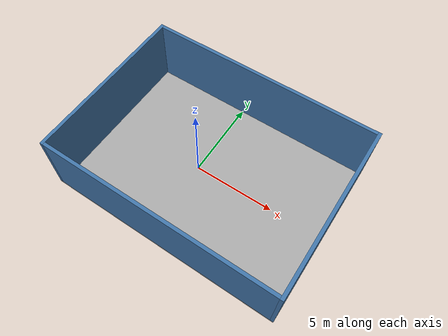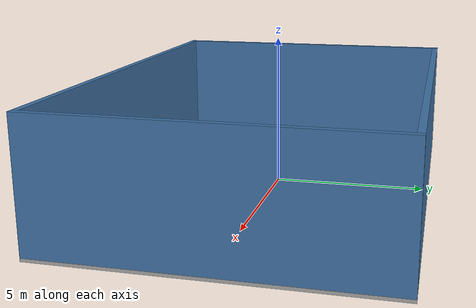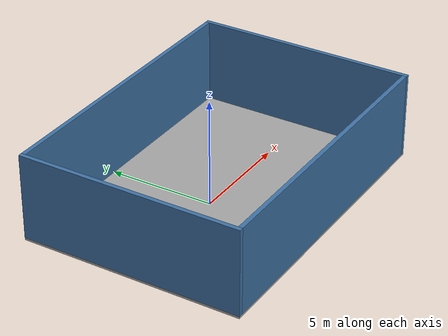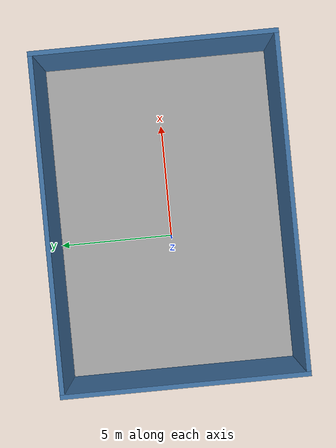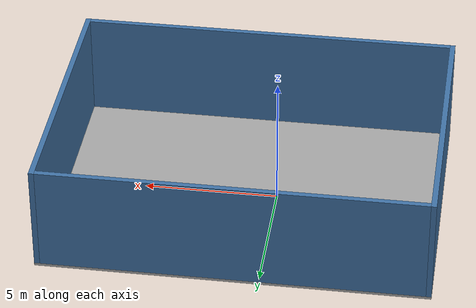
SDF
<?xml version='1.0' encoding='utf-8'?>
<sdf version="1.6">
  <world name="default">
    <gravity>0 0 -9.8</gravity>
    <magnetic_field>6e-06 2.3e-05 -4.2e-05</magnetic_field>
    <physics name="default_physics" type="ode">
      <max_step_size>.001</max_step_size>
      <real_time_factor>1</real_time_factor>
      <real_time_update_rate>1000</real_time_update_rate>
    </physics>
    <scene>
      <ambient>.5 .5 .5 1</ambient>
      <background>.7 .7 .7 1</background>
      <shadows>false</shadows>
    </scene>
    <light name="sun" type="directional">
      <pose>0 0 10 0 0 0</pose>
      <diffuse>.8 .8 .8 1</diffuse>
      <direction>-.2 .1 -1</direction>
    </light>
    <model name="arena_floor">
      <static>true</static>
      <pose>1.000000 0.000000 -0.050000 0.000000 0.000000 0.000000</pose>
      <link name="body">
        <collision name="collision">
          <geometry>
            <box>
              <size>14.400000 10.400000 0.100000</size>
            </box>
          </geometry>
        </collision>
        <visual name="visual">
          <geometry>
            <box>
              <size>14.400000 10.400000 0.100000</size>
            </box>
          </geometry>
          <material>
            <ambient>.65 .65 .65 1</ambient>
            <diffuse>.65 .65 .65 1</diffuse>
          </material>
        </visual>
      </link>
    </model>
    <model name="boundary_west">
      <static>true</static>
      <pose>-6.100000 0.000000 2.000000 0.000000 0.000000 0.000000</pose>
      <link name="body">
        <collision name="collision">
          <geometry>
            <box>
              <size>0.200000 10.400000 4.000000</size>
            </box>
          </geometry>
        </collision>
        <visual name="visual">
          <geometry>
            <box>
              <size>0.200000 10.400000 4.000000</size>
            </box>
          </geometry>
          <material>
            <ambient>.25 .45 .65 1</ambient>
            <diffuse>.25 .45 .65 1</diffuse>
          </material>
        </visual>
      </link>
    </model>
    <model name="boundary_east">
      <static>true</static>
      <pose>8.100000 0.000000 2.000000 0.000000 0.000000 0.000000</pose>
      <link name="body">
        <collision name="collision">
          <geometry>
            <box>
              <size>0.200000 10.400000 4.000000</size>
            </box>
          </geometry>
        </collision>
        <visual name="visual">
          <geometry>
            <box>
              <size>0.200000 10.400000 4.000000</size>
            </box>
          </geometry>
          <material>
            <ambient>.25 .45 .65 1</ambient>
            <diffuse>.25 .45 .65 1</diffuse>
          </material>
        </visual>
      </link>
    </model>
    <model name="boundary_south">
      <static>true</static>
      <pose>1.000000 -5.100000 2.000000 0.000000 0.000000 0.000000</pose>
      <link name="body">
        <collision name="collision">
          <geometry>
            <box>
              <size>14.000000 0.200000 4.000000</size>
            </box>
          </geometry>
        </collision>
        <visual name="visual">
          <geometry>
            <box>
              <size>14.000000 0.200000 4.000000</size>
            </box>
          </geometry>
          <material>
            <ambient>.25 .45 .65 1</ambient>
            <diffuse>.25 .45 .65 1</diffuse>
          </material>
        </visual>
      </link>
    </model>
    <model name="boundary_north">
      <static>true</static>
      <pose>1.000000 5.100000 2.000000 0.000000 0.000000 0.000000</pose>
      <link name="body">
        <collision name="collision">
          <geometry>
            <box>
              <size>14.000000 0.200000 4.000000</size>
            </box>
          </geometry>
        </collision>
        <visual name="visual">
          <geometry>
            <box>
              <size>14.000000 0.200000 4.000000</size>
            </box>
          </geometry>
          <material>
            <ambient>.25 .45 .65 1</ambient>
            <diffuse>.25 .45 .65 1</diffuse>
          </material>
        </visual>
      </link>
    </model>
  </world>
</sdf>
